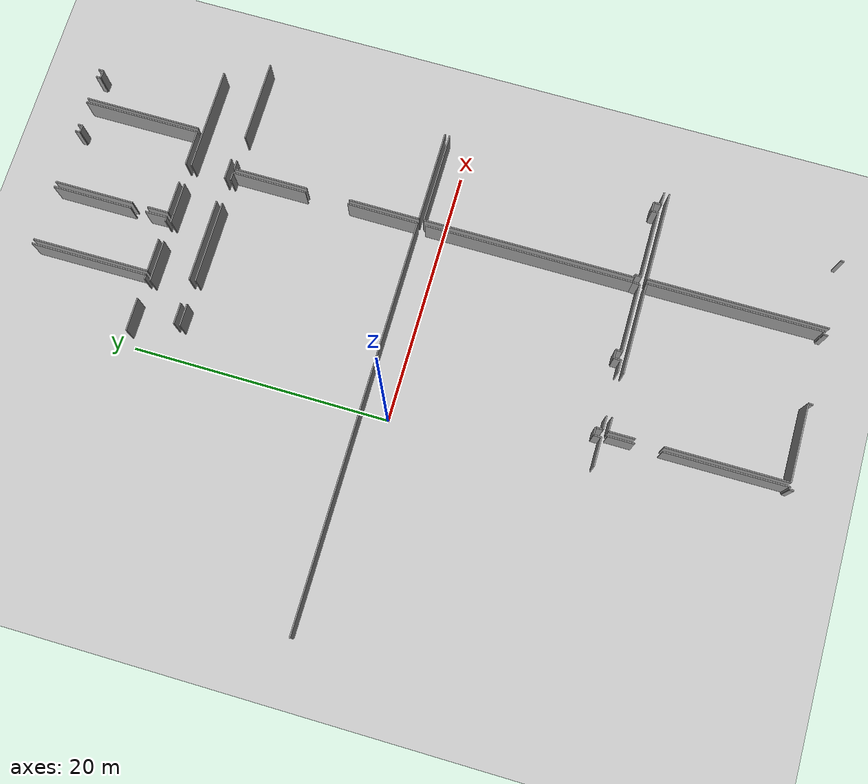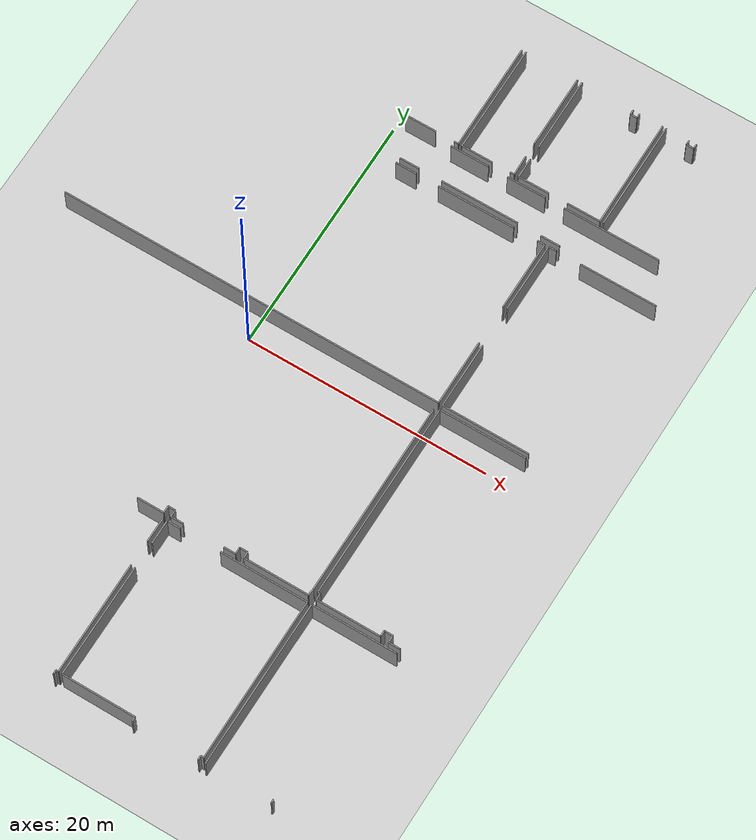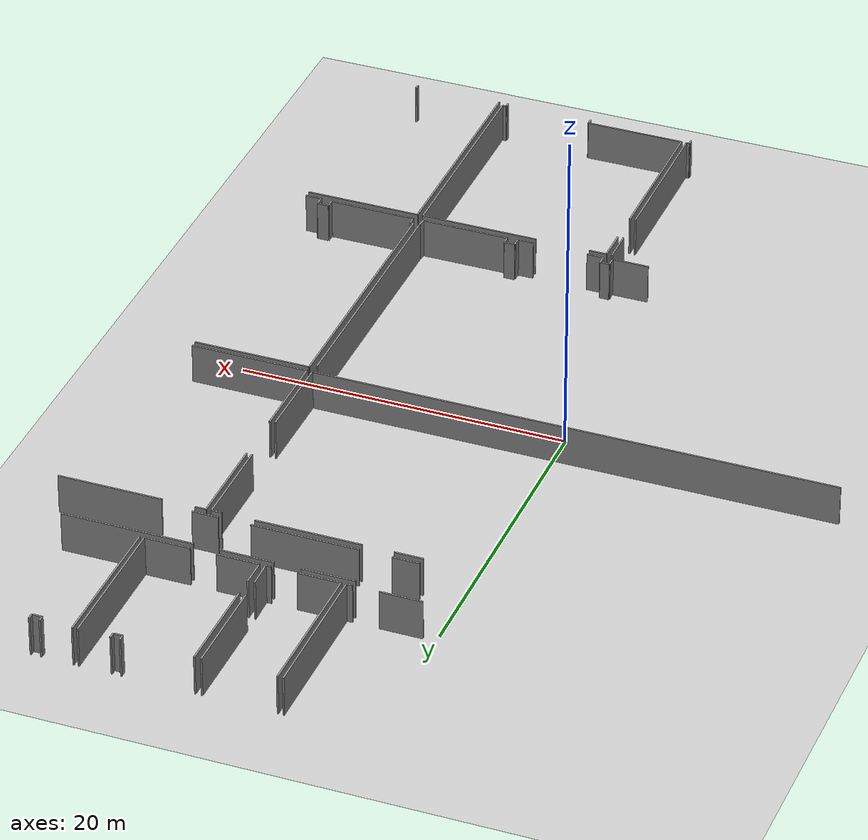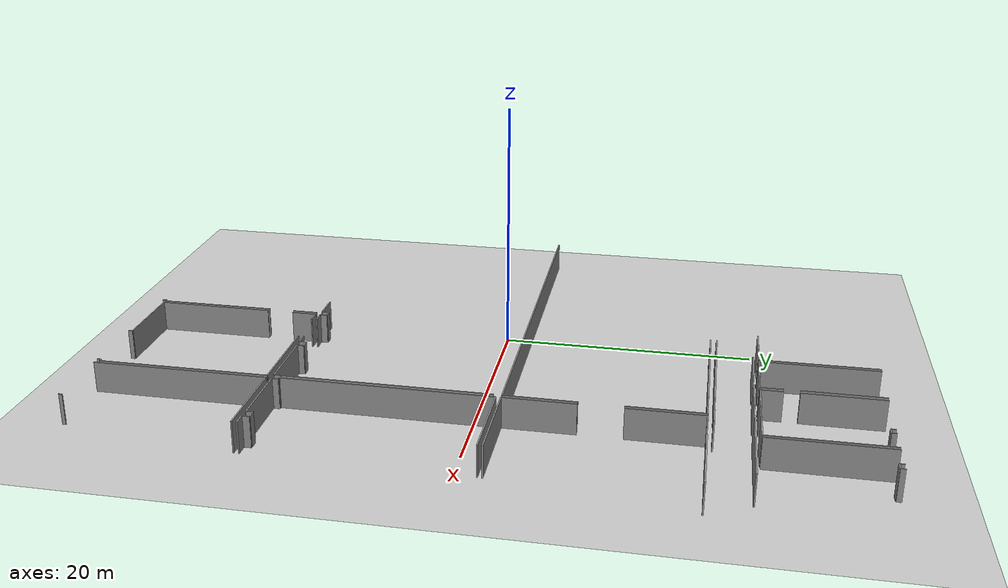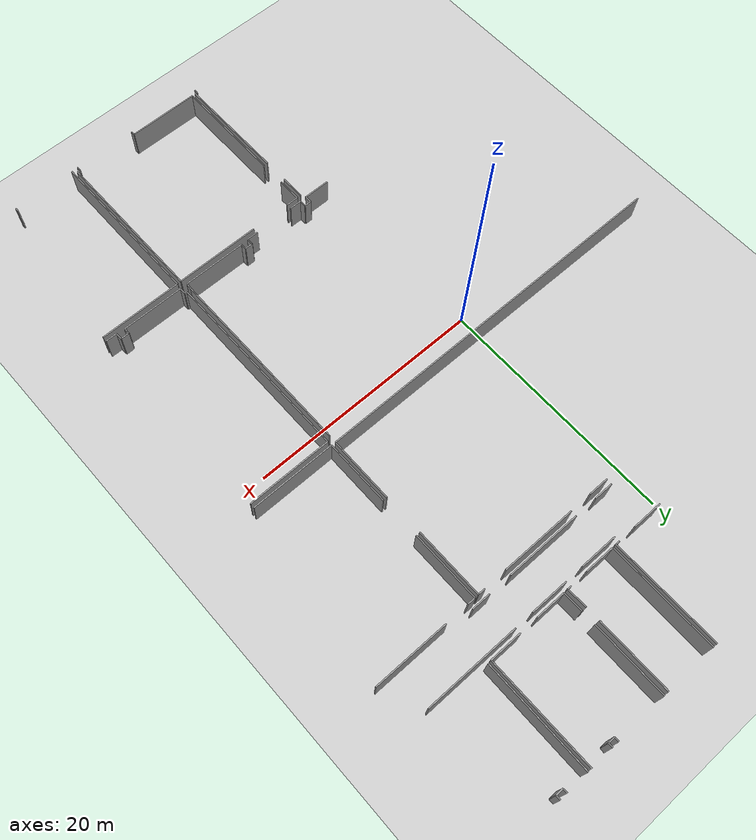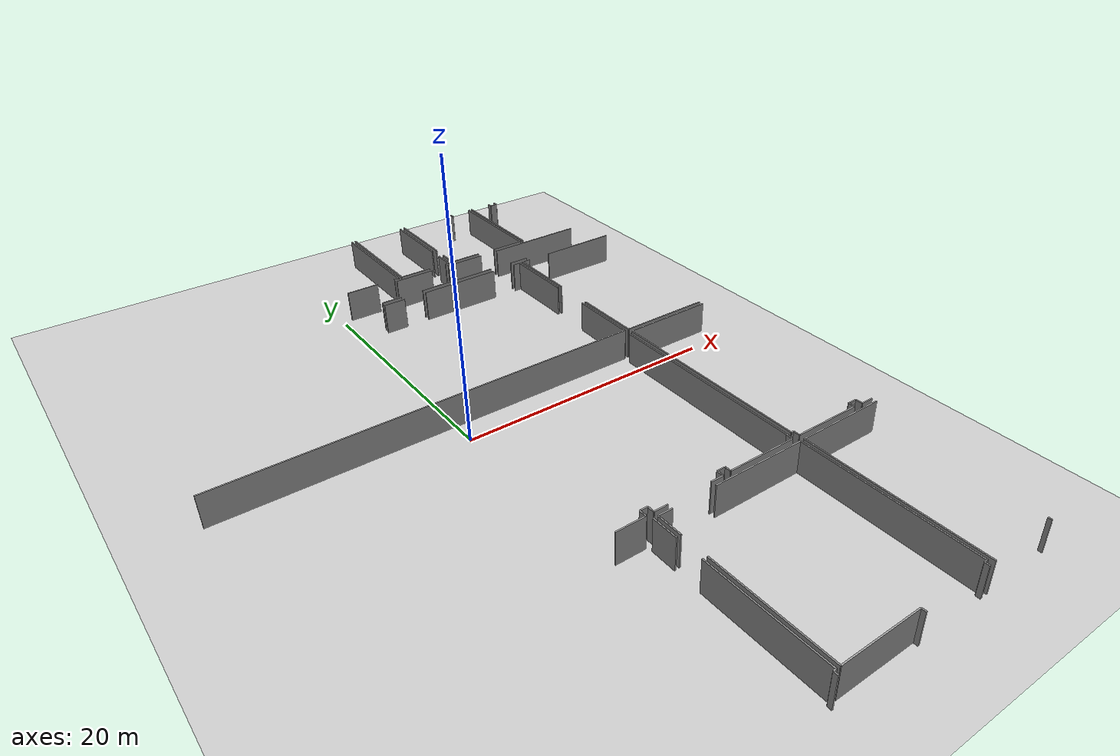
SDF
<sdf version="1.6">
 <world name="default">
  <model name="ground_plane">
   <static>1</static>
   <link name="link">
    <collision name="collision">
     <geometry><plane><normal>0 0 1</normal><size>100 100</size></plane></geometry>
     <surface><friction><ode><mu>100</mu><mu2>50</mu2></ode></friction></surface>
    </collision>
    <visual name="visual">
     <cast_shadows>0</cast_shadows>
     <geometry><plane><normal>0 0 1</normal><size>100 100</size></plane></geometry>
     <material>
      <script><uri>file://media/materials/scripts/gazebo.material</uri><name>Gazebo/Grey</name></script>
     </material>
    </visual>
   </link>
  </model>
  <model name="50010535_PLAN2">
   <static>1</static>
   <link name="Wall_168">
    <collision name="Wall_168_Collision">
     <geometry><box><size>3.22840098346 0.1 2.5</size></box></geometry>
     <pose>1.61420049173 0 1.25 0 0 0</pose>
    </collision>
    <visual name="Wall_168_Visual">
     <pose>1.61420049173 0 1.25 0 0 0</pose>
     <geometry><box><size>3.22840098346 0.1 2.5</size></box></geometry>
     <material>
      <script><uri>file://media/materials/scripts/gazebo.material</uri><name>Gazebo/Grey</name></script>
      <ambient>1 1 1 1</ambient>
     </material>
    </visual>
    <pose>107.479298362 -9.74515098187 0 0 0 0.0</pose>
   </link>
   <link name="Wall_169">
    <collision name="Wall_169_Collision">
     <geometry><box><size>3.22535148631 0.1 2.5</size></box></geometry>
     <pose>1.61267574316 0 1.25 0 0 0</pose>
    </collision>
    <visual name="Wall_169_Visual">
     <pose>1.61267574316 0 1.25 0 0 0</pose>
     <geometry><box><size>3.22535148631 0.1 2.5</size></box></geometry>
     <material>
      <script><uri>file://media/materials/scripts/gazebo.material</uri><name>Gazebo/Grey</name></script>
      <ambient>1 1 1 1</ambient>
     </material>
    </visual>
    <pose>112.295470861 -9.74515098187 0 0 0 0.0</pose>
   </link>
   <link name="Wall_170">
    <collision name="Wall_170_Collision">
     <geometry><box><size>7.99730627752 0.1 2.5</size></box></geometry>
     <pose>3.99865313876 0 1.25 0 0 0</pose>
    </collision>
    <visual name="Wall_170_Visual">
     <pose>3.99865313876 0 1.25 0 0 0</pose>
     <geometry><box><size>7.99730627752 0.1 2.5</size></box></geometry>
     <material>
      <script><uri>file://media/materials/scripts/gazebo.material</uri><name>Gazebo/Grey</name></script>
      <ambient>1 1 1 1</ambient>
     </material>
    </visual>
    <pose>117.121808352 -9.74515098187 0 0 0 0.0</pose>
   </link>
   <link name="Wall_186">
    <collision name="Wall_186_Collision">
     <geometry><box><size>1.59819063169 0.1 2.5</size></box></geometry>
     <pose>0.799095315845 0 1.25 0 0 0</pose>
    </collision>
    <visual name="Wall_186_Visual">
     <pose>0.799095315845 0 1.25 0 0 0</pose>
     <geometry><box><size>1.59819063169 0.1 2.5</size></box></geometry>
     <material>
      <script><uri>file://media/materials/scripts/gazebo.material</uri><name>Gazebo/Grey</name></script>
      <ambient>1 1 1 1</ambient>
     </material>
    </visual>
    <pose>118.414286894 -12.5499259862 0 0 0 3.14159265359</pose>
   </link>
   <link name="Wall_187">
    <collision name="Wall_187_Collision">
     <geometry><box><size>6.47077882887 0.1 2.5</size></box></geometry>
     <pose>3.23538941443 0 1.25 0 0 0</pose>
    </collision>
    <visual name="Wall_187_Visual">
     <pose>3.23538941443 0 1.25 0 0 0</pose>
     <geometry><box><size>6.47077882887 0.1 2.5</size></box></geometry>
     <material>
      <script><uri>file://media/materials/scripts/gazebo.material</uri><name>Gazebo/Grey</name></script>
      <ambient>1 1 1 1</ambient>
     </material>
    </visual>
    <pose>114.857556717 -12.5499259862 0 0 0 3.14159265359</pose>
   </link>
   <link name="Wall_188">
    <collision name="Wall_188_Collision">
     <geometry><box><size>1.62970210225 0.1 2.5</size></box></geometry>
     <pose>0.814851051124 0 1.25 0 0 0</pose>
    </collision>
    <visual name="Wall_188_Visual">
     <pose>0.814851051124 0 1.25 0 0 0</pose>
     <geometry><box><size>1.62970210225 0.1 2.5</size></box></geometry>
     <material>
      <script><uri>file://media/materials/scripts/gazebo.material</uri><name>Gazebo/Grey</name></script>
      <ambient>1 1 1 1</ambient>
     </material>
    </visual>
    <pose>106.445518827 -12.5499259862 0 0 0 3.14159265359</pose>
   </link>
   <link name="Wall_229">
    <collision name="Wall_229_Collision">
     <geometry><box><size>0.367718531413 0.1 2.5</size></box></geometry>
     <pose>0.183859265707 0 1.25 0 0 0</pose>
    </collision>
    <visual name="Wall_229_Visual">
     <pose>0.183859265707 0 1.25 0 0 0</pose>
     <geometry><box><size>0.367718531413 0.1 2.5</size></box></geometry>
     <material>
      <script><uri>file://media/materials/scripts/gazebo.material</uri><name>Gazebo/Grey</name></script>
      <ambient>1 1 1 1</ambient>
     </material>
    </visual>
    <pose>107.847016893 -9.31695075697 0 0 0 3.14159265359</pose>
   </link>
   <link name="Wall_230">
    <collision name="Wall_230_Collision">
     <geometry><box><size>2.57504621894 0.1 2.5</size></box></geometry>
     <pose>1.28752310947 0 1.25 0 0 0</pose>
    </collision>
    <visual name="Wall_230_Visual">
     <pose>1.28752310947 0 1.25 0 0 0</pose>
     <geometry><box><size>2.57504621894 0.1 2.5</size></box></geometry>
     <material>
      <script><uri>file://media/materials/scripts/gazebo.material</uri><name>Gazebo/Grey</name></script>
      <ambient>1 1 1 1</ambient>
     </material>
    </visual>
    <pose>105.923038316 -9.31695075697 0 0 0 3.14159265359</pose>
   </link>
   <link name="Wall_232">
    <collision name="Wall_232_Collision">
     <geometry><box><size>9.09839383414 0.1 2.5</size></box></geometry>
     <pose>4.54919691707 0 1.25 0 0 0</pose>
    </collision>
    <visual name="Wall_232_Visual">
     <pose>4.54919691707 0 1.25 0 0 0</pose>
     <geometry><box><size>9.09839383414 0.1 2.5</size></box></geometry>
     <material>
      <script><uri>file://media/materials/scripts/gazebo.material</uri><name>Gazebo/Grey</name></script>
      <ambient>1 1 1 1</ambient>
     </material>
    </visual>
    <pose>107.8122018 -0.218623533224 0 0 0 -1.56696980773</pose>
   </link>
   <link name="Wall_233">
    <collision name="Wall_233_Collision">
     <geometry><box><size>0.342051930395 0.1 2.5</size></box></geometry>
     <pose>0.171025965198 0 1.25 0 0 0</pose>
    </collision>
    <visual name="Wall_233_Visual">
     <pose>0.171025965198 0 1.25 0 0 0</pose>
     <geometry><box><size>0.342051930395 0.1 2.5</size></box></geometry>
     <material>
      <script><uri>file://media/materials/scripts/gazebo.material</uri><name>Gazebo/Grey</name></script>
      <ambient>1 1 1 1</ambient>
     </material>
    </visual>
    <pose>112.614905688 -9.31415538459 0 0 0 3.14159265359</pose>
   </link>
   <link name="Wall_234">
    <collision name="Wall_234_Collision">
     <geometry><box><size>2.58978545517 0.1 2.5</size></box></geometry>
     <pose>1.29489272758 0 1.25 0 0 0</pose>
    </collision>
    <visual name="Wall_234_Visual">
     <pose>1.29489272758 0 1.25 0 0 0</pose>
     <geometry><box><size>2.58978545517 0.1 2.5</size></box></geometry>
     <material>
      <script><uri>file://media/materials/scripts/gazebo.material</uri><name>Gazebo/Grey</name></script>
      <ambient>1 1 1 1</ambient>
     </material>
    </visual>
    <pose>110.749375806 -9.31415538459 0 0 0 3.14159265359</pose>
   </link>
   <link name="Wall_235">
    <collision name="Wall_235_Collision">
     <geometry><box><size>9.09553185136 0.1 2.5</size></box></geometry>
     <pose>4.54776592568 0 1.25 0 0 0</pose>
    </collision>
    <visual name="Wall_235_Visual">
     <pose>4.54776592568 0 1.25 0 0 0</pose>
     <geometry><box><size>9.09553185136 0.1 2.5</size></box></geometry>
     <material>
      <script><uri>file://media/materials/scripts/gazebo.material</uri><name>Gazebo/Grey</name></script>
      <ambient>1 1 1 1</ambient>
     </material>
    </visual>
    <pose>108.159590351 -9.31415538459 0 0 0 1.57079632679</pose>
   </link>
   <link name="Wall_236">
    <collision name="Wall_236_Collision">
     <geometry><box><size>6.21393493135 0.1 2.5</size></box></geometry>
     <pose>3.10696746568 0 1.25 0 0 0</pose>
    </collision>
    <visual name="Wall_236_Visual">
     <pose>3.10696746568 0 1.25 0 0 0</pose>
     <geometry><box><size>6.21393493135 0.1 2.5</size></box></geometry>
     <material>
      <script><uri>file://media/materials/scripts/gazebo.material</uri><name>Gazebo/Grey</name></script>
      <ambient>1 1 1 1</ambient>
     </material>
    </visual>
    <pose>112.569417355 -0.218623533224 0 0 0 -1.57079632679</pose>
   </link>
   <link name="Wall_237">
    <collision name="Wall_237_Collision">
     <geometry><box><size>1.69079580428 0.1 2.5</size></box></geometry>
     <pose>0.845397902138 0 1.25 0 0 0</pose>
    </collision>
    <visual name="Wall_237_Visual">
     <pose>0.845397902138 0 1.25 0 0 0</pose>
     <geometry><box><size>1.69079580428 0.1 2.5</size></box></geometry>
     <material>
      <script><uri>file://media/materials/scripts/gazebo.material</uri><name>Gazebo/Grey</name></script>
      <ambient>1 1 1 1</ambient>
     </material>
    </visual>
    <pose>112.569417355 -7.62397158885 0 0 0 -1.5438895758</pose>
   </link>
   <link name="Wall_238">
    <collision name="Wall_238_Collision">
     <geometry><box><size>2.7585242975 0.1 2.5</size></box></geometry>
     <pose>1.37926214875 0 1.25 0 0 0</pose>
    </collision>
    <visual name="Wall_238_Visual">
     <pose>1.37926214875 0 1.25 0 0 0</pose>
     <geometry><box><size>2.7585242975 0.1 2.5</size></box></geometry>
     <material>
      <script><uri>file://media/materials/scripts/gazebo.material</uri><name>Gazebo/Grey</name></script>
      <ambient>1 1 1 1</ambient>
     </material>
    </visual>
    <pose>119.865339288 -9.29967027312 0 0 0 3.14159265359</pose>
   </link>
   <link name="Wall_239">
    <collision name="Wall_239_Collision">
     <geometry><box><size>2.56742247606 0.1 2.5</size></box></geometry>
     <pose>1.28371123803 0 1.25 0 0 0</pose>
    </collision>
    <visual name="Wall_239_Visual">
     <pose>1.28371123803 0 1.25 0 0 0</pose>
     <geometry><box><size>2.56742247606 0.1 2.5</size></box></geometry>
     <material>
      <script><uri>file://media/materials/scripts/gazebo.material</uri><name>Gazebo/Grey</name></script>
      <ambient>1 1 1 1</ambient>
     </material>
    </visual>
    <pose>115.5449642 -9.29967027312 0 0 0 3.14159265359</pose>
   </link>
   <link name="Wall_240">
    <collision name="Wall_240_Collision">
     <geometry><box><size>1.67722343284 0.1 2.5</size></box></geometry>
     <pose>0.838611716422 0 1.25 0 0 0</pose>
    </collision>
    <visual name="Wall_240_Visual">
     <pose>0.838611716422 0 1.25 0 0 0</pose>
     <geometry><box><size>1.67722343284 0.1 2.5</size></box></geometry>
     <material>
      <script><uri>file://media/materials/scripts/gazebo.material</uri><name>Gazebo/Grey</name></script>
      <ambient>1 1 1 1</ambient>
     </material>
    </visual>
    <pose>112.977541724 -9.29967027312 0 0 0 1.57079632679</pose>
   </link>
   <link name="Wall_241">
    <collision name="Wall_241_Collision">
     <geometry><box><size>6.22450652148 0.1 2.5</size></box></geometry>
     <pose>3.11225326074 0 1.25 0 0 0</pose>
    </collision>
    <visual name="Wall_241_Visual">
     <pose>3.11225326074 0 1.25 0 0 0</pose>
     <geometry><box><size>6.22450652148 0.1 2.5</size></box></geometry>
     <material>
      <script><uri>file://media/materials/scripts/gazebo.material</uri><name>Gazebo/Grey</name></script>
      <ambient>1 1 1 1</ambient>
     </material>
    </visual>
    <pose>112.977541724 -6.4431300547 0 0 0 1.57079632679</pose>
   </link>
   <link name="Wall_242">
    <collision name="Wall_242_Collision">
     <geometry><box><size>0.384058753645 0.1 2.5</size></box></geometry>
     <pose>0.192029376823 0 1.25 0 0 0</pose>
    </collision>
    <visual name="Wall_242_Visual">
     <pose>0.192029376823 0 1.25 0 0 0</pose>
     <geometry><box><size>0.384058753645 0.1 2.5</size></box></geometry>
     <material>
      <script><uri>file://media/materials/scripts/gazebo.material</uri><name>Gazebo/Grey</name></script>
      <ambient>1 1 1 1</ambient>
     </material>
    </visual>
    <pose>117.332223655 -0.218623533224 0 0 0 -1.57079632679</pose>
   </link>
   <link name="Wall_243">
    <collision name="Wall_243_Collision">
     <geometry><box><size>0.556787354752 0.1 2.5</size></box></geometry>
     <pose>0.278393677376 0 1.25 0 0 0</pose>
    </collision>
    <visual name="Wall_243_Visual">
     <pose>0.278393677376 0 1.25 0 0 0</pose>
     <geometry><box><size>0.556787354752 0.1 2.5</size></box></geometry>
     <material>
      <script><uri>file://media/materials/scripts/gazebo.material</uri><name>Gazebo/Grey</name></script>
      <ambient>1 1 1 1</ambient>
     </material>
    </visual>
    <pose>117.332223655 -0.602682286869 0 0 0 0.0</pose>
   </link>
   <link name="Wall_244">
    <collision name="Wall_244_Collision">
     <geometry><box><size>0.373817525714 0.1 2.5</size></box></geometry>
     <pose>0.186908762857 0 1.25 0 0 0</pose>
    </collision>
    <visual name="Wall_244_Visual">
     <pose>0.186908762857 0 1.25 0 0 0</pose>
     <geometry><box><size>0.373817525714 0.1 2.5</size></box></geometry>
     <material>
      <script><uri>file://media/materials/scripts/gazebo.material</uri><name>Gazebo/Grey</name></script>
      <ambient>1 1 1 1</ambient>
     </material>
    </visual>
    <pose>117.88901101 -0.602682286869 0 0 0 1.57079632679</pose>
   </link>
   <link name="Wall_245">
    <collision name="Wall_245_Collision">
     <geometry><box><size>9.07083763855 0.1 2.5</size></box></geometry>
     <pose>4.53541881928 0 1.25 0 0 0</pose>
    </collision>
    <visual name="Wall_245_Visual">
     <pose>4.53541881928 0 1.25 0 0 0</pose>
     <geometry><box><size>9.07083763855 0.1 2.5</size></box></geometry>
     <material>
      <script><uri>file://media/materials/scripts/gazebo.material</uri><name>Gazebo/Grey</name></script>
      <ambient>1 1 1 1</ambient>
     </material>
    </visual>
    <pose>119.841197436 -0.228864761154 0 0 0 -1.56813484371</pose>
   </link>
   <link name="Wall_248">
    <collision name="Wall_248_Collision">
     <geometry><box><size>9.0563204005 0.1 2.5</size></box></geometry>
     <pose>4.52816020025 0 1.25 0 0 0</pose>
    </collision>
    <visual name="Wall_248_Visual">
     <pose>4.52816020025 0 1.25 0 0 0</pose>
     <geometry><box><size>9.0563204005 0.1 2.5</size></box></geometry>
     <material>
      <script><uri>file://media/materials/scripts/gazebo.material</uri><name>Gazebo/Grey</name></script>
      <ambient>1 1 1 1</ambient>
     </material>
    </visual>
    <pose>120.154025019 -9.28518516166 0 0 0 1.57079632679</pose>
   </link>
   <link name="Wall_249">
    <collision name="Wall_249_Collision">
     <geometry><box><size>0.365533058455 0.1 2.5</size></box></geometry>
     <pose>0.182766529228 0 1.25 0 0 0</pose>
    </collision>
    <visual name="Wall_249_Visual">
     <pose>0.182766529228 0 1.25 0 0 0</pose>
     <geometry><box><size>0.365533058455 0.1 2.5</size></box></geometry>
     <material>
      <script><uri>file://media/materials/scripts/gazebo.material</uri><name>Gazebo/Grey</name></script>
      <ambient>1 1 1 1</ambient>
     </material>
    </visual>
    <pose>122.075716473 -0.228864761154 0 0 0 -1.57079632679</pose>
   </link>
   <link name="Wall_250">
    <collision name="Wall_250_Collision">
     <geometry><box><size>0.623113917778 0.1 2.5</size></box></geometry>
     <pose>0.311556958889 0 1.25 0 0 0</pose>
    </collision>
    <visual name="Wall_250_Visual">
     <pose>0.311556958889 0 1.25 0 0 0</pose>
     <geometry><box><size>0.623113917778 0.1 2.5</size></box></geometry>
     <material>
      <script><uri>file://media/materials/scripts/gazebo.material</uri><name>Gazebo/Grey</name></script>
      <ambient>1 1 1 1</ambient>
     </material>
    </visual>
    <pose>122.075716473 -0.59439781961 0 0 0 0.0</pose>
   </link>
   <link name="Wall_251">
    <collision name="Wall_251_Collision">
     <geometry><box><size>0.373842938191 0.1 2.5</size></box></geometry>
     <pose>0.186921469095 0 1.25 0 0 0</pose>
    </collision>
    <visual name="Wall_251_Visual">
     <pose>0.186921469095 0 1.25 0 0 0</pose>
     <geometry><box><size>0.373842938191 0.1 2.5</size></box></geometry>
     <material>
      <script><uri>file://media/materials/scripts/gazebo.material</uri><name>Gazebo/Grey</name></script>
      <ambient>1 1 1 1</ambient>
     </material>
    </visual>
    <pose>122.698830391 -0.59439781961 0 0 0 1.57079632679</pose>
   </link>
   <link name="Wall_311">
    <collision name="Wall_311_Collision">
     <geometry><box><size>31.9170536775 0.1 2.5</size></box></geometry>
     <pose>15.9585268388 0 1.25 0 0 0</pose>
    </collision>
    <visual name="Wall_311_Visual">
     <pose>15.9585268388 0 1.25 0 0 0</pose>
     <geometry><box><size>31.9170536775 0.1 2.5</size></box></geometry>
     <material>
      <script><uri>file://media/materials/scripts/gazebo.material</uri><name>Gazebo/Grey</name></script>
      <ambient>1 1 1 1</ambient>
     </material>
    </visual>
    <pose>117.402107965 -27.740996042 0 0 0 3.14159265359</pose>
   </link>
   <link name="Wall_319">
    <collision name="Wall_319_Collision">
     <geometry><box><size>1.74456649492 0.1 2.5</size></box></geometry>
     <pose>0.87228324746 0 1.25 0 0 0</pose>
    </collision>
    <visual name="Wall_319_Visual">
     <pose>0.87228324746 0 1.25 0 0 0</pose>
     <geometry><box><size>1.74456649492 0.1 2.5</size></box></geometry>
     <material>
      <script><uri>file://media/materials/scripts/gazebo.material</uri><name>Gazebo/Grey</name></script>
      <ambient>1 1 1 1</ambient>
     </material>
    </visual>
    <pose>104.771599017 -13.0213274207 0 0 0 0.0</pose>
   </link>
   <link name="Wall_320">
    <collision name="Wall_320_Collision">
     <geometry><box><size>6.41817500302 0.1 2.5</size></box></geometry>
     <pose>3.20908750151 0 1.25 0 0 0</pose>
    </collision>
    <visual name="Wall_320_Visual">
     <pose>3.20908750151 0 1.25 0 0 0</pose>
     <geometry><box><size>6.41817500302 0.1 2.5</size></box></geometry>
     <material>
      <script><uri>file://media/materials/scripts/gazebo.material</uri><name>Gazebo/Grey</name></script>
      <ambient>1 1 1 1</ambient>
     </material>
    </visual>
    <pose>108.404058372 -13.0213274207 0 0 0 0.0</pose>
   </link>
   <link name="Wall_321">
    <collision name="Wall_321_Collision">
     <geometry><box><size>0.615236050139 0.1 2.5</size></box></geometry>
     <pose>0.307618025069 0 1.25 0 0 0</pose>
    </collision>
    <visual name="Wall_321_Visual">
     <pose>0.307618025069 0 1.25 0 0 0</pose>
     <geometry><box><size>0.615236050139 0.1 2.5</size></box></geometry>
     <material>
      <script><uri>file://media/materials/scripts/gazebo.material</uri><name>Gazebo/Grey</name></script>
      <ambient>1 1 1 1</ambient>
     </material>
    </visual>
    <pose>116.810251393 -13.0213274207 0 0 0 0.0</pose>
   </link>
   <link name="Wall_322">
    <collision name="Wall_322_Collision">
     <geometry><box><size>5.82428543293 0.1 2.5</size></box></geometry>
     <pose>2.91214271647 0 1.25 0 0 0</pose>
    </collision>
    <visual name="Wall_322_Visual">
     <pose>2.91214271647 0 1.25 0 0 0</pose>
     <geometry><box><size>5.82428543293 0.1 2.5</size></box></geometry>
     <material>
      <script><uri>file://media/materials/scripts/gazebo.material</uri><name>Gazebo/Grey</name></script>
      <ambient>1 1 1 1</ambient>
     </material>
    </visual>
    <pose>117.425487443 -13.0213274207 0 0 0 -1.57079632679</pose>
   </link>
   <link name="Wall_323">
    <collision name="Wall_323_Collision">
     <geometry><box><size>5.54225625877 0.1 2.5</size></box></geometry>
     <pose>2.77112812938 0 1.25 0 0 0</pose>
    </collision>
    <visual name="Wall_323_Visual">
     <pose>2.77112812938 0 1.25 0 0 0</pose>
     <geometry><box><size>5.54225625877 0.1 2.5</size></box></geometry>
     <material>
      <script><uri>file://media/materials/scripts/gazebo.material</uri><name>Gazebo/Grey</name></script>
      <ambient>1 1 1 1</ambient>
     </material>
    </visual>
    <pose>117.425487443 -22.1987890955 0 0 0 -1.5750147437</pose>
   </link>
   <link name="Wall_325">
    <collision name="Wall_325_Collision">
     <geometry><box><size>7.18486941164 0.1 2.5</size></box></geometry>
     <pose>3.59243470582 0 1.25 0 0 0</pose>
    </collision>
    <visual name="Wall_325_Visual">
     <pose>3.59243470582 0 1.25 0 0 0</pose>
     <geometry><box><size>7.18486941164 0.1 2.5</size></box></geometry>
     <material>
      <script><uri>file://media/materials/scripts/gazebo.material</uri><name>Gazebo/Grey</name></script>
      <ambient>1 1 1 1</ambient>
     </material>
    </visual>
    <pose>124.935382426 -27.7664085183 0 0 0 3.14159265359</pose>
   </link>
   <link name="Wall_326">
    <collision name="Wall_326_Collision">
     <geometry><box><size>5.5462729427 0.1 2.5</size></box></geometry>
     <pose>2.77313647135 0 1.25 0 0 0</pose>
    </collision>
    <visual name="Wall_326_Visual">
     <pose>2.77313647135 0 1.25 0 0 0</pose>
     <geometry><box><size>5.5462729427 0.1 2.5</size></box></geometry>
     <material>
      <script><uri>file://media/materials/scripts/gazebo.material</uri><name>Gazebo/Grey</name></script>
      <ambient>1 1 1 1</ambient>
     </material>
    </visual>
    <pose>117.750513014 -27.7664085183 0 0 0 1.57079632679</pose>
   </link>
   <link name="Wall_327">
    <collision name="Wall_327_Collision">
     <geometry><box><size>5.84156591679 0.1 2.5</size></box></geometry>
     <pose>2.92078295839 0 1.25 0 0 0</pose>
    </collision>
    <visual name="Wall_327_Visual">
     <pose>2.92078295839 0 1.25 0 0 0</pose>
     <geometry><box><size>5.84156591679 0.1 2.5</size></box></geometry>
     <material>
      <script><uri>file://media/materials/scripts/gazebo.material</uri><name>Gazebo/Grey</name></script>
      <ambient>1 1 1 1</ambient>
     </material>
    </visual>
    <pose>117.750513014 -18.8458669784 0 0 0 1.57079632679</pose>
   </link>
   <link name="Wall_328">
    <collision name="Wall_328_Collision">
     <geometry><box><size>0.661740881686 0.1 2.5</size></box></geometry>
     <pose>0.330870440843 0 1.25 0 0 0</pose>
    </collision>
    <visual name="Wall_328_Visual">
     <pose>0.330870440843 0 1.25 0 0 0</pose>
     <geometry><box><size>0.661740881686 0.1 2.5</size></box></geometry>
     <material>
      <script><uri>file://media/materials/scripts/gazebo.material</uri><name>Gazebo/Grey</name></script>
      <ambient>1 1 1 1</ambient>
     </material>
    </visual>
    <pose>117.750513014 -13.0043010616 0 0 0 0.0</pose>
   </link>
   <link name="Wall_329">
    <collision name="Wall_329_Collision">
     <geometry><box><size>6.35362731333 0.1 2.5</size></box></geometry>
     <pose>3.17681365666 0 1.25 0 0 0</pose>
    </collision>
    <visual name="Wall_329_Visual">
     <pose>3.17681365666 0 1.25 0 0 0</pose>
     <geometry><box><size>6.35362731333 0.1 2.5</size></box></geometry>
     <material>
      <script><uri>file://media/materials/scripts/gazebo.material</uri><name>Gazebo/Grey</name></script>
      <ambient>1 1 1 1</ambient>
     </material>
    </visual>
    <pose>120.417552397 -13.0043010616 0 0 0 0.0</pose>
   </link>
   <link name="Wall_617">
    <collision name="Wall_617_Collision">
     <geometry><box><size>0.284111484533 0.1 2.5</size></box></geometry>
     <pose>0.142055742267 0 1.25 0 0 0</pose>
    </collision>
    <visual name="Wall_617_Visual">
     <pose>0.142055742267 0 1.25 0 0 0</pose>
     <geometry><box><size>0.284111484533 0.1 2.5</size></box></geometry>
     <material>
      <script><uri>file://media/materials/scripts/gazebo.material</uri><name>Gazebo/Grey</name></script>
      <ambient>1 1 1 1</ambient>
     </material>
    </visual>
    <pose>123.298056581 -59.1808034154 0 0 0 -1.57079632679</pose>
   </link>
   <link name="Wall_618">
    <collision name="Wall_618_Collision">
     <geometry><box><size>13.8846146516 0.1 2.5</size></box></geometry>
     <pose>6.94230732578 0 1.25 0 0 0</pose>
    </collision>
    <visual name="Wall_618_Visual">
     <pose>6.94230732578 0 1.25 0 0 0</pose>
     <geometry><box><size>13.8846146516 0.1 2.5</size></box></geometry>
     <material>
      <script><uri>file://media/materials/scripts/gazebo.material</uri><name>Gazebo/Grey</name></script>
      <ambient>1 1 1 1</ambient>
     </material>
    </visual>
    <pose>117.892314632 -59.4649149 0 0 0 1.57079632679</pose>
   </link>
   <link name="Wall_619">
    <collision name="Wall_619_Collision">
     <geometry><box><size>7.02934505696 0.1 2.5</size></box></geometry>
     <pose>3.51467252848 0 1.25 0 0 0</pose>
    </collision>
    <visual name="Wall_619_Visual">
     <pose>3.51467252848 0 1.25 0 0 0</pose>
     <geometry><box><size>7.02934505696 0.1 2.5</size></box></geometry>
     <material>
      <script><uri>file://media/materials/scripts/gazebo.material</uri><name>Gazebo/Grey</name></script>
      <ambient>1 1 1 1</ambient>
     </material>
    </visual>
    <pose>117.892314632 -45.5803002484 0 0 0 0.0</pose>
   </link>
   <link name="Wall_632">
    <collision name="Wall_632_Collision">
     <geometry><box><size>0.977617961538 0.1 2.5</size></box></geometry>
     <pose>0.488808980769 0 1.25 0 0 0</pose>
    </collision>
    <visual name="Wall_632_Visual">
     <pose>0.488808980769 0 1.25 0 0 0</pose>
     <geometry><box><size>0.977617961538 0.1 2.5</size></box></geometry>
     <material>
      <script><uri>file://media/materials/scripts/gazebo.material</uri><name>Gazebo/Grey</name></script>
      <ambient>1 1 1 1</ambient>
     </material>
    </visual>
    <pose>124.940210796 -45.1688722578 0 0 0 3.14159265359</pose>
   </link>
   <link name="Wall_633">
    <collision name="Wall_633_Collision">
     <geometry><box><size>0.57457608813 0.1 2.5</size></box></geometry>
     <pose>0.287288044065 0 1.25 0 0 0</pose>
    </collision>
    <visual name="Wall_633_Visual">
     <pose>0.287288044065 0 1.25 0 0 0</pose>
     <geometry><box><size>0.57457608813 0.1 2.5</size></box></geometry>
     <material>
      <script><uri>file://media/materials/scripts/gazebo.material</uri><name>Gazebo/Grey</name></script>
      <ambient>1 1 1 1</ambient>
     </material>
    </visual>
    <pose>123.962592835 -45.1688722578 0 0 0 1.57079632679</pose>
   </link>
   <link name="Wall_634">
    <collision name="Wall_634_Collision">
     <geometry><box><size>0.703163217982 0.1 2.5</size></box></geometry>
     <pose>0.351581608991 0 1.25 0 0 0</pose>
    </collision>
    <visual name="Wall_634_Visual">
     <pose>0.351581608991 0 1.25 0 0 0</pose>
     <geometry><box><size>0.703163217982 0.1 2.5</size></box></geometry>
     <material>
      <script><uri>file://media/materials/scripts/gazebo.material</uri><name>Gazebo/Grey</name></script>
      <ambient>1 1 1 1</ambient>
     </material>
    </visual>
    <pose>123.962592835 -44.5942961697 0 0 0 3.14159265359</pose>
   </link>
   <link name="Wall_635">
    <collision name="Wall_635_Collision">
     <geometry><box><size>0.505454152716 0.1 2.5</size></box></geometry>
     <pose>0.252727076358 0 1.25 0 0 0</pose>
    </collision>
    <visual name="Wall_635_Visual">
     <pose>0.252727076358 0 1.25 0 0 0</pose>
     <geometry><box><size>0.505454152716 0.1 2.5</size></box></geometry>
     <material>
      <script><uri>file://media/materials/scripts/gazebo.material</uri><name>Gazebo/Grey</name></script>
      <ambient>1 1 1 1</ambient>
     </material>
    </visual>
    <pose>123.259429617 -44.5942961697 0 0 0 -1.57079632679</pose>
   </link>
   <link name="Wall_636">
    <collision name="Wall_636_Collision">
     <geometry><box><size>5.28452443727 0.1 2.5</size></box></geometry>
     <pose>2.64226221864 0 1.25 0 0 0</pose>
    </collision>
    <visual name="Wall_636_Visual">
     <pose>2.64226221864 0 1.25 0 0 0</pose>
     <geometry><box><size>5.28452443727 0.1 2.5</size></box></geometry>
     <material>
      <script><uri>file://media/materials/scripts/gazebo.material</uri><name>Gazebo/Grey</name></script>
      <ambient>1 1 1 1</ambient>
     </material>
    </visual>
    <pose>123.259429617 -45.0997503224 0 0 0 3.14159265359</pose>
   </link>
   <link name="Wall_637">
    <collision name="Wall_637_Collision">
     <geometry><box><size>0.516381517506 0.1 2.5</size></box></geometry>
     <pose>0.258190758753 0 1.25 0 0 0</pose>
    </collision>
    <visual name="Wall_637_Visual">
     <pose>0.258190758753 0 1.25 0 0 0</pose>
     <geometry><box><size>0.516381517506 0.1 2.5</size></box></geometry>
     <material>
      <script><uri>file://media/materials/scripts/gazebo.material</uri><name>Gazebo/Grey</name></script>
      <ambient>1 1 1 1</ambient>
     </material>
    </visual>
    <pose>117.97490518 -45.0997503224 0 0 0 1.57079632679</pose>
   </link>
   <link name="Wall_638">
    <collision name="Wall_638_Collision">
     <geometry><box><size>0.208890554818 0.1 2.5</size></box></geometry>
     <pose>0.104445277409 0 1.25 0 0 0</pose>
    </collision>
    <visual name="Wall_638_Visual">
     <pose>0.104445277409 0 1.25 0 0 0</pose>
     <geometry><box><size>0.208890554818 0.1 2.5</size></box></geometry>
     <material>
      <script><uri>file://media/materials/scripts/gazebo.material</uri><name>Gazebo/Grey</name></script>
      <ambient>1 1 1 1</ambient>
     </material>
    </visual>
    <pose>117.97490518 -44.5833688049 0 0 0 3.14159265359</pose>
   </link>
   <link name="Wall_639">
    <collision name="Wall_639_Collision">
     <geometry><box><size>16.43882264 0.1 2.5</size></box></geometry>
     <pose>8.21941131999 0 1.25 0 0 0</pose>
    </collision>
    <visual name="Wall_639_Visual">
     <pose>8.21941131999 0 1.25 0 0 0</pose>
     <geometry><box><size>16.43882264 0.1 2.5</size></box></geometry>
     <material>
      <script><uri>file://media/materials/scripts/gazebo.material</uri><name>Gazebo/Grey</name></script>
      <ambient>1 1 1 1</ambient>
     </material>
    </visual>
    <pose>117.766014625 -44.5833688049 0 0 0 1.57079632679</pose>
   </link>
   <link name="Wall_640">
    <collision name="Wall_640_Collision">
     <geometry><box><size>7.16098168396 0.1 2.5</size></box></geometry>
     <pose>3.58049084198 0 1.25 0 0 0</pose>
    </collision>
    <visual name="Wall_640_Visual">
     <pose>3.58049084198 0 1.25 0 0 0</pose>
     <geometry><box><size>7.16098168396 0.1 2.5</size></box></geometry>
     <material>
      <script><uri>file://media/materials/scripts/gazebo.material</uri><name>Gazebo/Grey</name></script>
      <ambient>1 1 1 1</ambient>
     </material>
    </visual>
    <pose>117.766014625 -28.1445461649 0 0 0 0.0</pose>
   </link>
   <link name="Wall_647">
    <collision name="Wall_647_Collision">
     <geometry><box><size>5.3610159908 0.1 2.5</size></box></geometry>
     <pose>2.6805079954 0 1.25 0 0 0</pose>
    </collision>
    <visual name="Wall_647_Visual">
     <pose>2.6805079954 0 1.25 0 0 0</pose>
     <geometry><box><size>5.3610159908 0.1 2.5</size></box></geometry>
     <material>
      <script><uri>file://media/materials/scripts/gazebo.material</uri><name>Gazebo/Grey</name></script>
      <ambient>1 1 1 1</ambient>
     </material>
    </visual>
    <pose>117.317738544 -45.1132189348 0 0 0 3.14159265359</pose>
   </link>
   <link name="Wall_648">
    <collision name="Wall_648_Collision">
     <geometry><box><size>0.497068035552 0.1 2.5</size></box></geometry>
     <pose>0.248534017776 0 1.25 0 0 0</pose>
    </collision>
    <visual name="Wall_648_Visual">
     <pose>0.248534017776 0 1.25 0 0 0</pose>
     <geometry><box><size>0.497068035552 0.1 2.5</size></box></geometry>
     <material>
      <script><uri>file://media/materials/scripts/gazebo.material</uri><name>Gazebo/Grey</name></script>
      <ambient>1 1 1 1</ambient>
     </material>
    </visual>
    <pose>111.956722553 -45.1132189348 0 0 0 1.57079632679</pose>
   </link>
   <link name="Wall_649">
    <collision name="Wall_649_Collision">
     <geometry><box><size>0.659453758823 0.1 2.5</size></box></geometry>
     <pose>0.329726879411 0 1.25 0 0 0</pose>
    </collision>
    <visual name="Wall_649_Visual">
     <pose>0.329726879411 0 1.25 0 0 0</pose>
     <geometry><box><size>0.659453758823 0.1 2.5</size></box></geometry>
     <material>
      <script><uri>file://media/materials/scripts/gazebo.material</uri><name>Gazebo/Grey</name></script>
      <ambient>1 1 1 1</ambient>
     </material>
    </visual>
    <pose>111.956722553 -44.6161508993 0 0 0 3.14159265359</pose>
   </link>
   <link name="Wall_650">
    <collision name="Wall_650_Collision">
     <geometry><box><size>0.556024980464 0.1 2.5</size></box></geometry>
     <pose>0.278012490232 0 1.25 0 0 0</pose>
    </collision>
    <visual name="Wall_650_Visual">
     <pose>0.278012490232 0 1.25 0 0 0</pose>
     <geometry><box><size>0.556024980464 0.1 2.5</size></box></geometry>
     <material>
      <script><uri>file://media/materials/scripts/gazebo.material</uri><name>Gazebo/Grey</name></script>
      <ambient>1 1 1 1</ambient>
     </material>
    </visual>
    <pose>111.297268794 -44.6161508993 0 0 0 -1.57079632679</pose>
   </link>
   <link name="Wall_651">
    <collision name="Wall_651_Collision">
     <geometry><box><size>0.985495829177 0.1 2.5</size></box></geometry>
     <pose>0.492747914589 0 1.25 0 0 0</pose>
    </collision>
    <visual name="Wall_651_Visual">
     <pose>0.492747914589 0 1.25 0 0 0</pose>
     <geometry><box><size>0.985495829177 0.1 2.5</size></box></geometry>
     <material>
      <script><uri>file://media/materials/scripts/gazebo.material</uri><name>Gazebo/Grey</name></script>
      <ambient>1 1 1 1</ambient>
     </material>
    </visual>
    <pose>111.297268794 -45.1721758797 0 0 0 3.14159265359</pose>
   </link>
   <link name="Wall_652">
    <collision name="Wall_652_Collision">
     <geometry><box><size>1.03606665693 0.1 2.5</size></box></geometry>
     <pose>0.518033328463 0 1.25 0 0 0</pose>
    </collision>
    <visual name="Wall_652_Visual">
     <pose>0.518033328463 0 1.25 0 0 0</pose>
     <geometry><box><size>1.03606665693 0.1 2.5</size></box></geometry>
     <material>
      <script><uri>file://media/materials/scripts/gazebo.material</uri><name>Gazebo/Grey</name></script>
      <ambient>1 1 1 1</ambient>
     </material>
    </visual>
    <pose>106.923019256 -45.1721758797 0 0 0 3.14159265359</pose>
   </link>
   <link name="Wall_653">
    <collision name="Wall_653_Collision">
     <geometry><box><size>0.561869850003 0.1 2.5</size></box></geometry>
     <pose>0.280934925001 0 1.25 0 0 0</pose>
    </collision>
    <visual name="Wall_653_Visual">
     <pose>0.280934925001 0 1.25 0 0 0</pose>
     <geometry><box><size>0.561869850003 0.1 2.5</size></box></geometry>
     <material>
      <script><uri>file://media/materials/scripts/gazebo.material</uri><name>Gazebo/Grey</name></script>
      <ambient>1 1 1 1</ambient>
     </material>
    </visual>
    <pose>105.886952599 -45.1721758797 0 0 0 1.57079632679</pose>
   </link>
   <link name="Wall_654">
    <collision name="Wall_654_Collision">
     <geometry><box><size>0.584741078633 0.1 2.5</size></box></geometry>
     <pose>0.292370539316 0 1.25 0 0 0</pose>
    </collision>
    <visual name="Wall_654_Visual">
     <pose>0.292370539316 0 1.25 0 0 0</pose>
     <geometry><box><size>0.584741078633 0.1 2.5</size></box></geometry>
     <material>
      <script><uri>file://media/materials/scripts/gazebo.material</uri><name>Gazebo/Grey</name></script>
      <ambient>1 1 1 1</ambient>
     </material>
    </visual>
    <pose>105.886952599 -44.6103060297 0 0 0 3.14159265359</pose>
   </link>
   <link name="Wall_655">
    <collision name="Wall_655_Collision">
     <geometry><box><size>0.584995203395 0.1 2.5</size></box></geometry>
     <pose>0.292497601698 0 1.25 0 0 0</pose>
    </collision>
    <visual name="Wall_655_Visual">
     <pose>0.292497601698 0 1.25 0 0 0</pose>
     <geometry><box><size>0.584995203395 0.1 2.5</size></box></geometry>
     <material>
      <script><uri>file://media/materials/scripts/gazebo.material</uri><name>Gazebo/Grey</name></script>
      <ambient>1 1 1 1</ambient>
     </material>
    </visual>
    <pose>105.302211521 -44.6103060297 0 0 0 -1.57079632679</pose>
   </link>
   <link name="Wall_656">
    <collision name="Wall_656_Collision">
     <geometry><box><size>2.2299447914 0.1 2.5</size></box></geometry>
     <pose>1.1149723957 0 1.25 0 0 0</pose>
    </collision>
    <visual name="Wall_656_Visual">
     <pose>1.1149723957 0 1.25 0 0 0</pose>
     <geometry><box><size>2.2299447914 0.1 2.5</size></box></geometry>
     <material>
      <script><uri>file://media/materials/scripts/gazebo.material</uri><name>Gazebo/Grey</name></script>
      <ambient>1 1 1 1</ambient>
     </material>
    </visual>
    <pose>105.302211521 -45.1953012331 0 0 0 3.14159265359</pose>
   </link>
   <link name="Wall_684">
    <collision name="Wall_684_Collision">
     <geometry><box><size>16.1821566298 0.1 2.5</size></box></geometry>
     <pose>8.0910783149 0 1.25 0 0 0</pose>
    </collision>
    <visual name="Wall_684_Visual">
     <pose>8.0910783149 0 1.25 0 0 0</pose>
     <geometry><box><size>16.1821566298 0.1 2.5</size></box></geometry>
     <material>
      <script><uri>file://media/materials/scripts/gazebo.material</uri><name>Gazebo/Grey</name></script>
      <ambient>1 1 1 1</ambient>
     </material>
    </visual>
    <pose>117.375424865 -28.3808821941 0 0 0 -1.57079632679</pose>
   </link>
   <link name="Wall_685">
    <collision name="Wall_685_Collision">
     <geometry><box><size>0.553196046714 0.1 2.5</size></box></geometry>
     <pose>0.276598023357 0 1.25 0 0 0</pose>
    </collision>
    <visual name="Wall_685_Visual">
     <pose>0.276598023357 0 1.25 0 0 0</pose>
     <geometry><box><size>0.553196046714 0.1 2.5</size></box></geometry>
     <material>
      <script><uri>file://media/materials/scripts/gazebo.material</uri><name>Gazebo/Grey</name></script>
      <ambient>1 1 1 1</ambient>
     </material>
    </visual>
    <pose>117.375424865 -44.5630388239 0 0 0 -1.67526450362</pose>
   </link>
   <link name="Wall_686">
    <collision name="Wall_686_Collision">
     <geometry><box><size>0.249804641589 0.1 2.5</size></box></geometry>
     <pose>0.124902320794 0 1.25 0 0 0</pose>
    </collision>
    <visual name="Wall_686_Visual">
     <pose>0.124902320794 0 1.25 0 0 0</pose>
     <geometry><box><size>0.249804641589 0.1 2.5</size></box></geometry>
     <material>
      <script><uri>file://media/materials/scripts/gazebo.material</uri><name>Gazebo/Grey</name></script>
      <ambient>1 1 1 1</ambient>
     </material>
    </visual>
    <pose>117.567543185 -59.140651703 0 0 0 3.14159265359</pose>
   </link>
   <link name="Wall_687">
    <collision name="Wall_687_Collision">
     <geometry><box><size>0.345863801834 0.1 2.5</size></box></geometry>
     <pose>0.172931900917 0 1.25 0 0 0</pose>
    </collision>
    <visual name="Wall_687_Visual">
     <pose>0.172931900917 0 1.25 0 0 0</pose>
     <geometry><box><size>0.345863801834 0.1 2.5</size></box></geometry>
     <material>
      <script><uri>file://media/materials/scripts/gazebo.material</uri><name>Gazebo/Grey</name></script>
      <ambient>1 1 1 1</ambient>
     </material>
    </visual>
    <pose>117.317738544 -59.140651703 0 0 0 -1.57079632679</pose>
   </link>
   <link name="Wall_688">
    <collision name="Wall_688_Collision">
     <geometry><box><size>0.357045291386 0.1 2.5</size></box></geometry>
     <pose>0.178522645693 0 1.25 0 0 0</pose>
    </collision>
    <visual name="Wall_688_Visual">
     <pose>0.178522645693 0 1.25 0 0 0</pose>
     <geometry><box><size>0.357045291386 0.1 2.5</size></box></geometry>
     <material>
      <script><uri>file://media/materials/scripts/gazebo.material</uri><name>Gazebo/Grey</name></script>
      <ambient>1 1 1 1</ambient>
     </material>
    </visual>
    <pose>111.899290357 -59.4865155048 0 0 0 1.57079632679</pose>
   </link>
   <link name="Wall_689">
    <collision name="Wall_689_Collision">
     <geometry><box><size>6.04537397635 0.1 2.5</size></box></geometry>
     <pose>3.02268698818 0 1.25 0 0 0</pose>
    </collision>
    <visual name="Wall_689_Visual">
     <pose>3.02268698818 0 1.25 0 0 0</pose>
     <geometry><box><size>6.04537397635 0.1 2.5</size></box></geometry>
     <material>
      <script><uri>file://media/materials/scripts/gazebo.material</uri><name>Gazebo/Grey</name></script>
      <ambient>1 1 1 1</ambient>
     </material>
    </visual>
    <pose>111.899290357 -59.1294702134 0 0 0 3.14159265359</pose>
   </link>
   <link name="Wall_690">
    <collision name="Wall_690_Collision">
     <geometry><box><size>9.36602224862 0.1 2.5</size></box></geometry>
     <pose>4.68301112431 0 1.25 0 0 0</pose>
    </collision>
    <visual name="Wall_690_Visual">
     <pose>4.68301112431 0 1.25 0 0 0</pose>
     <geometry><box><size>9.36602224862 0.1 2.5</size></box></geometry>
     <material>
      <script><uri>file://media/materials/scripts/gazebo.material</uri><name>Gazebo/Grey</name></script>
      <ambient>1 1 1 1</ambient>
     </material>
    </visual>
    <pose>105.85391638 -59.1294702134 0 0 0 1.57079632679</pose>
   </link>
   <link name="Wall_691">
    <collision name="Wall_691_Collision">
     <geometry><box><size>2.00504437654 0.1 2.5</size></box></geometry>
     <pose>1.00252218827 0 1.25 0 0 0</pose>
    </collision>
    <visual name="Wall_691_Visual">
     <pose>1.00252218827 0 1.25 0 0 0</pose>
     <geometry><box><size>2.00504437654 0.1 2.5</size></box></geometry>
     <material>
      <script><uri>file://media/materials/scripts/gazebo.material</uri><name>Gazebo/Grey</name></script>
      <ambient>1 1 1 1</ambient>
     </material>
    </visual>
    <pose>105.85391638 -47.601354485 0 0 0 1.57079632679</pose>
   </link>
   <link name="Wall_692">
    <collision name="Wall_692_Collision">
     <geometry><box><size>1.08587511039 0.1 2.5</size></box></geometry>
     <pose>0.542937555193 0 1.25 0 0 0</pose>
    </collision>
    <visual name="Wall_692_Visual">
     <pose>0.542937555193 0 1.25 0 0 0</pose>
     <geometry><box><size>1.08587511039 0.1 2.5</size></box></geometry>
     <material>
      <script><uri>file://media/materials/scripts/gazebo.material</uri><name>Gazebo/Grey</name></script>
      <ambient>1 1 1 1</ambient>
     </material>
    </visual>
    <pose>105.85391638 -45.5963101084 0 0 0 0.0</pose>
   </link>
   <link name="Wall_693">
    <collision name="Wall_693_Collision">
     <geometry><box><size>7.22603762317 0.1 2.5</size></box></geometry>
     <pose>3.61301881159 0 1.25 0 0 0</pose>
    </collision>
    <visual name="Wall_693_Visual">
     <pose>3.61301881159 0 1.25 0 0 0</pose>
     <geometry><box><size>7.22603762317 0.1 2.5</size></box></geometry>
     <material>
      <script><uri>file://media/materials/scripts/gazebo.material</uri><name>Gazebo/Grey</name></script>
      <ambient>1 1 1 1</ambient>
     </material>
    </visual>
    <pose>110.317617834 -45.5963101084 0 0 0 0.0</pose>
   </link>
   <link name="Wall_694">
    <collision name="Wall_694_Collision">
     <geometry><box><size>13.5443626595 0.1 2.5</size></box></geometry>
     <pose>6.77218132975 0 1.25 0 0 0</pose>
    </collision>
    <visual name="Wall_694_Visual">
     <pose>6.77218132975 0 1.25 0 0 0</pose>
     <geometry><box><size>13.5443626595 0.1 2.5</size></box></geometry>
     <material>
      <script><uri>file://media/materials/scripts/gazebo.material</uri><name>Gazebo/Grey</name></script>
      <ambient>1 1 1 1</ambient>
     </material>
    </visual>
    <pose>117.543655458 -45.5963101084 0 0 0 -1.56903266019</pose>
   </link>
   <link name="Wall_695">
    <collision name="Wall_695_Collision">
     <geometry><box><size>0.200504437654 0.1 2.5</size></box></geometry>
     <pose>0.100252218827 0 1.25 0 0 0</pose>
    </collision>
    <visual name="Wall_695_Visual">
     <pose>0.100252218827 0 1.25 0 0 0</pose>
     <geometry><box><size>0.200504437654 0.1 2.5</size></box></geometry>
     <material>
      <script><uri>file://media/materials/scripts/gazebo.material</uri><name>Gazebo/Grey</name></script>
      <ambient>1 1 1 1</ambient>
     </material>
    </visual>
    <pose>105.536260427 -59.1304867125 0 0 0 3.14159265359</pose>
   </link>
   <link name="Wall_696">
    <collision name="Wall_696_Collision">
     <geometry><box><size>0.320959575103 0.1 2.5</size></box></geometry>
     <pose>0.160479787552 0 1.25 0 0 0</pose>
    </collision>
    <visual name="Wall_696_Visual">
     <pose>0.160479787552 0 1.25 0 0 0</pose>
     <geometry><box><size>0.320959575103 0.1 2.5</size></box></geometry>
     <material>
      <script><uri>file://media/materials/scripts/gazebo.material</uri><name>Gazebo/Grey</name></script>
      <ambient>1 1 1 1</ambient>
     </material>
    </visual>
    <pose>105.335755989 -59.1304867125 0 0 0 -1.57079632679</pose>
   </link>
   <link name="Wall_707">
    <collision name="Wall_707_Collision">
     <geometry><box><size>2.03299810042 0.1 2.5</size></box></geometry>
     <pose>1.01649905021 0 1.25 0 0 0</pose>
    </collision>
    <visual name="Wall_707_Visual">
     <pose>1.01649905021 0 1.25 0 0 0</pose>
     <geometry><box><size>2.03299810042 0.1 2.5</size></box></geometry>
     <material>
      <script><uri>file://media/materials/scripts/gazebo.material</uri><name>Gazebo/Grey</name></script>
      <ambient>1 1 1 1</ambient>
     </material>
    </visual>
    <pose>105.502715958 -45.6016467285 0 0 0 -1.57079632679</pose>
   </link>
   <link name="Wall_708">
    <collision name="Wall_708_Collision">
     <geometry><box><size>9.39047813944 0.1 2.5</size></box></geometry>
     <pose>4.69523906972 0 1.25 0 0 0</pose>
    </collision>
    <visual name="Wall_708_Visual">
     <pose>4.69523906972 0 1.25 0 0 0</pose>
     <geometry><box><size>9.39047813944 0.1 2.5</size></box></geometry>
     <material>
      <script><uri>file://media/materials/scripts/gazebo.material</uri><name>Gazebo/Grey</name></script>
      <ambient>1 1 1 1</ambient>
     </material>
    </visual>
    <pose>105.502715958 -49.7400684866 0 0 0 -1.56722414021</pose>
   </link>
   <pose>-102.6 29.7873404573 0 0 0 0</pose>
  </model>
 </world>
</sdf>
